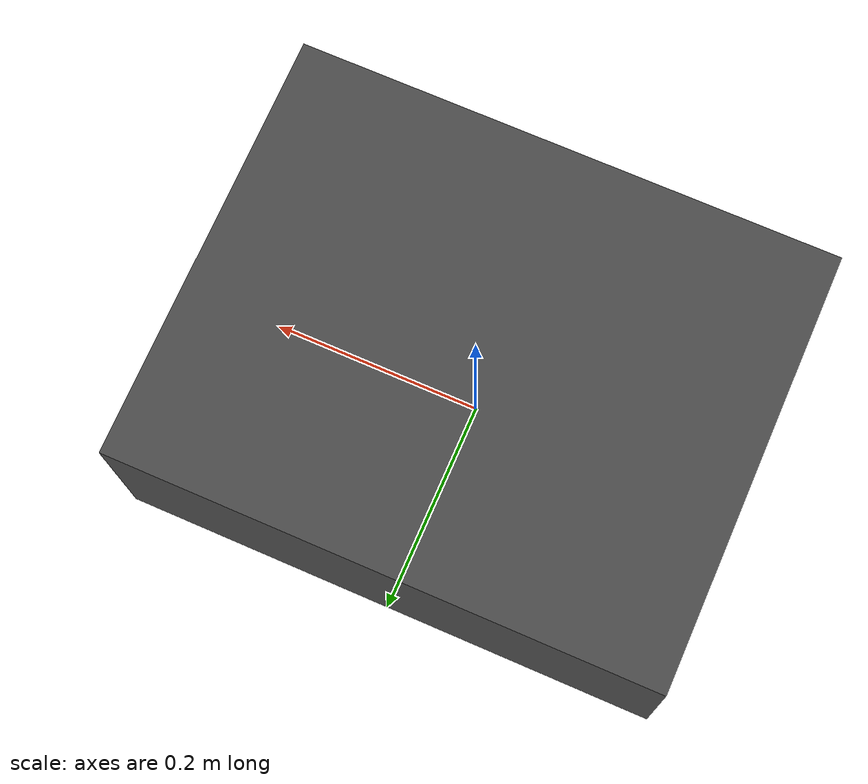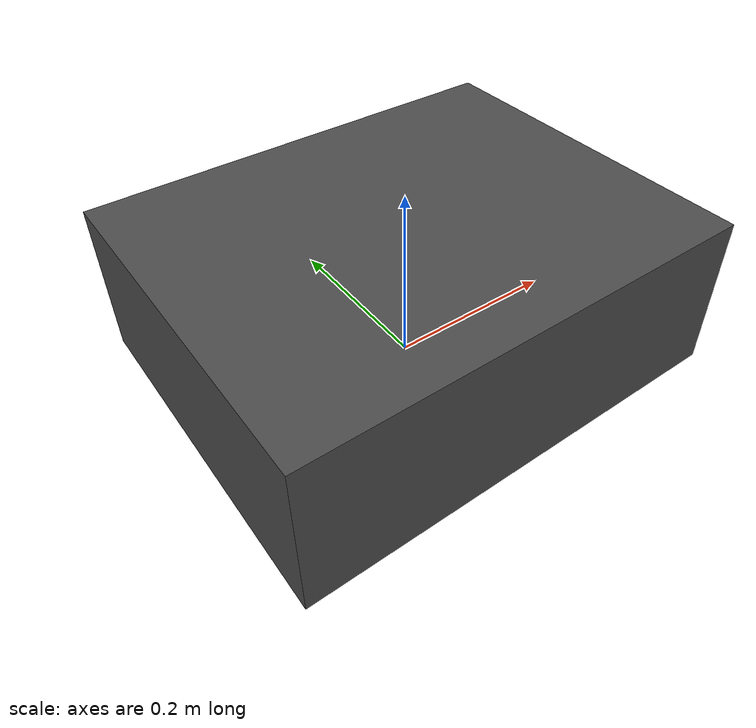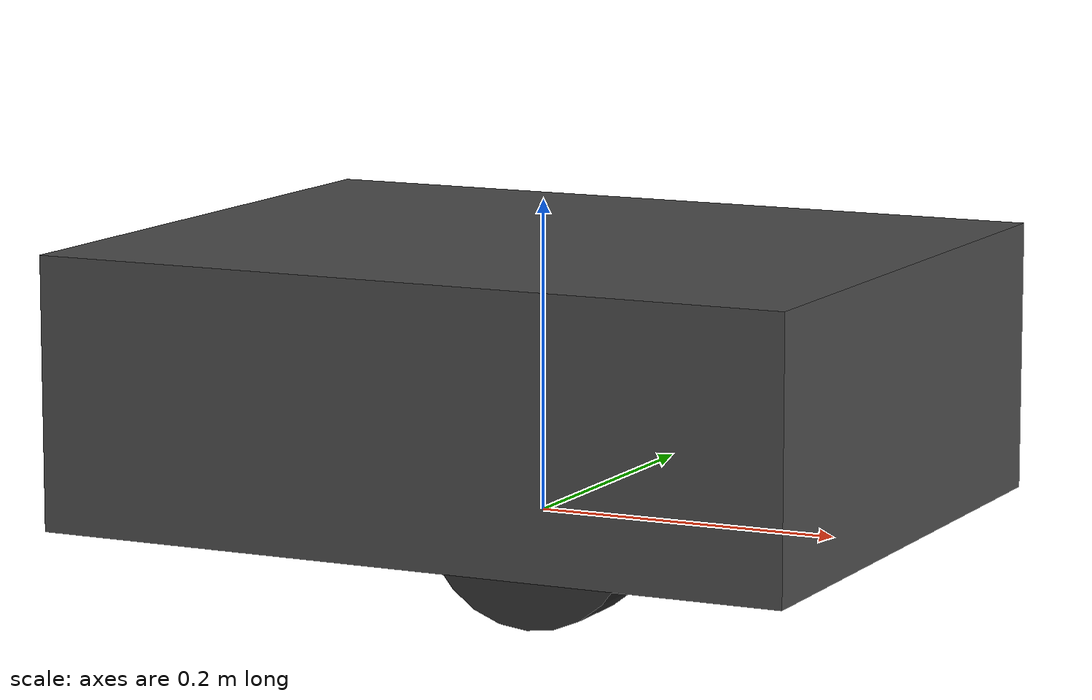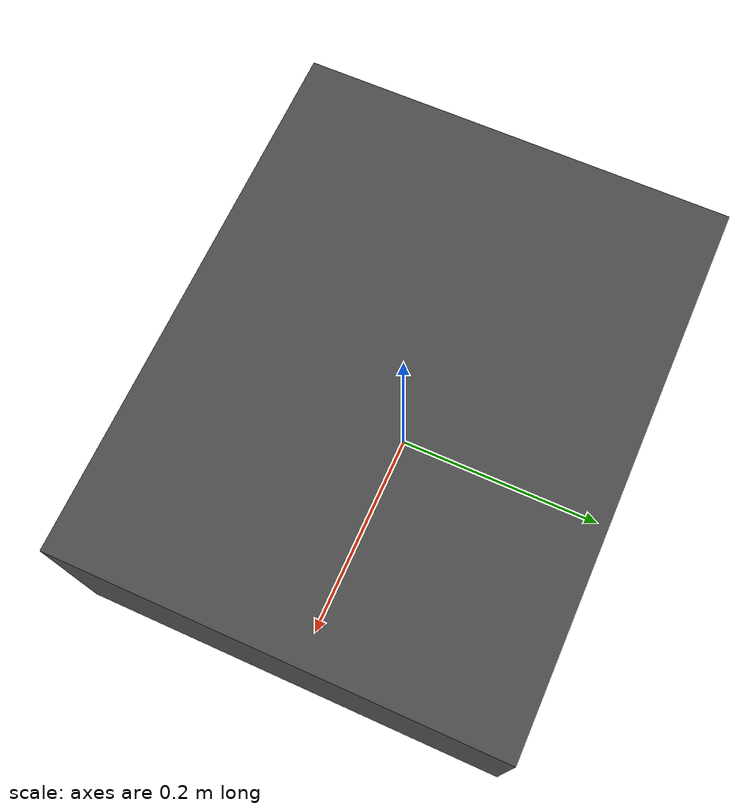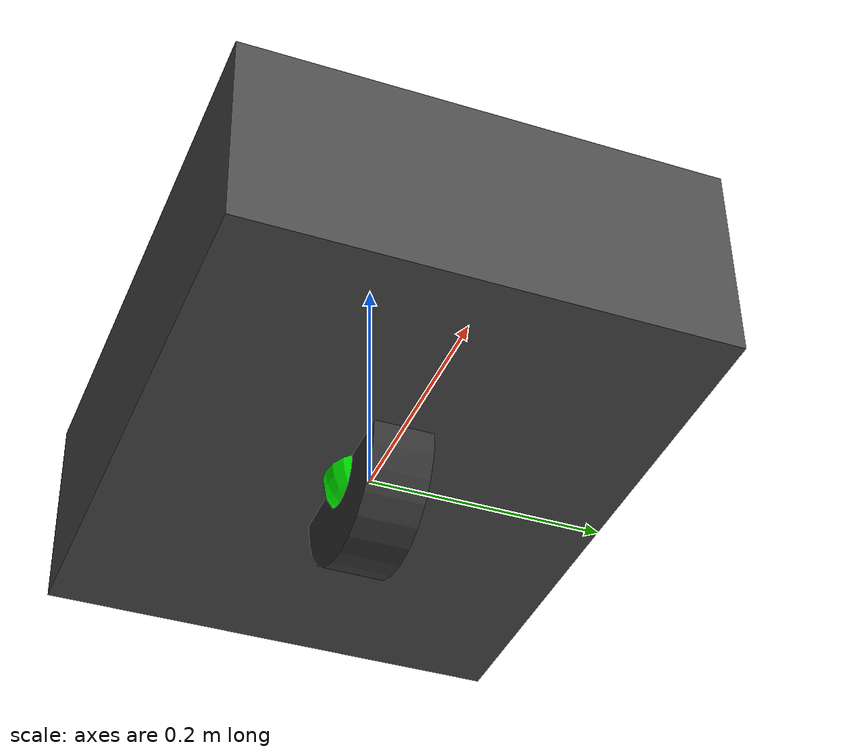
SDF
<?xml version="1.0" ?>
<sdf version="1.8">
  <model name="errandbot">

    <pose>0.0 0.0 0.0 0.0 0.0 0.0</pose>

    <link name="base_footprint"/>

    <link name="base_link">

      <inertial>
        <pose>0 0 0.0875 0 0 0</pose>
        <inertia>
          <ixx>0.4765625</ixx>
          <ixy>0</ixy>
          <ixz>0</ixz>
          <iyy>0.7015625</iyy>
          <iyz>0</iyz>
          <izz>1.025</izz>
        </inertia>
        <mass>30</mass>
      </inertial>

      <collision name="base_collision">
        <pose>0 0 0.0875 0 0 0</pose>
        <geometry>
          <box>
            <size>0.5 0.4 0.175</size>
          </box>
        </geometry>
      </collision>

      <visual name="base_visual">
        <pose>0 0 0.0875 0 0 0</pose>
        <geometry>
          <box>
            <size>0.5 0.4 0.175</size>
          </box>
        </geometry>
        <material>
          <ambient>0.3 0.3 0.3 1.0</ambient>
          <diffuse>0.3 0.3 0.3 1.0</diffuse>
        </material>
      </visual>

    </link>

    <link name="wheel_left_link">

      <inertial>
        <pose>0 0 0 1.57 0 0</pose>
        <inertia>
          <ixx>3.2291666e-03</ixx>
          <ixy>0</ixy>
          <ixz>0</ixz>
          <iyy>3.2291666e-03</iyy>
          <iyz>0</iyz>
          <izz>5.625e-03</izz>
        </inertia>
        <mass>0.2</mass>
      </inertial>

      <collision name="wheel_left_collision">
        <pose>0 0 0 1.57 0 0</pose>
        <geometry>
          <cylinder>
            <radius>0.075</radius>
            <length>0.05</length>
          </cylinder>
        </geometry>
        <surface>
          <friction>
            <ode>
              <mu>100000.0</mu>
              <mu2>100000.0</mu2>
              <fdir1>0 0 0</fdir1>
              <slip1>0.0</slip1>
              <slip2>0.0</slip2>
            </ode>
          </friction>
          <contact>
            <ode>
              <soft_cfm>0</soft_cfm>
              <soft_erp>0.2</soft_erp>
              <kp>1e+5</kp>
              <kd>1</kd>
              <max_vel>0.01</max_vel>
              <min_depth>0.001</min_depth>
            </ode>
          </contact>
        </surface>
      </collision>

      <visual name="wheel_left_visual">
        <pose>0 0 0 1.57 0 0</pose>
        <geometry>
          <cylinder>
            <radius>0.075</radius>
            <length>0.05</length>
          </cylinder>
        </geometry>
        <material>
          <ambient>0.2 0.2 0.2 1.0</ambient>
          <diffuse>0.2 0.2 0.2 1.0</diffuse>
        </material>
      </visual>
    </link>

    <link name="wheel_right_link">

      <inertial>
        <pose>0 0 0 1.57 0 0</pose>
        <inertia>
          <ixx>3.2291666e-03</ixx>
          <ixy>0</ixy>
          <ixz>0</ixz>
          <iyy>3.2291666e-03</iyy>
          <iyz>0</iyz>
          <izz>5.625e-03</izz>
        </inertia>
        <mass>0.2</mass>
      </inertial>

      <collision name="wheel_right_collision">
        <pose>0 0 0 1.57 0 0</pose>
        <geometry>
          <cylinder>
            <radius>0.075</radius>
            <length>0.05</length>
          </cylinder>
        </geometry>
        <surface>
          <friction>
            <ode>
              <mu>100000.0</mu>
              <mu2>100000.0</mu2>
              <fdir1>0 0 0</fdir1>
              <slip1>0.0</slip1>
              <slip2>0.0</slip2>
            </ode>
          </friction>
          <contact>
            <ode>
              <soft_cfm>0</soft_cfm>
              <soft_erp>0.2</soft_erp>
              <kp>1e+5</kp>
              <kd>1</kd>
              <max_vel>0.01</max_vel>
              <min_depth>0.001</min_depth>
            </ode>
          </contact>
        </surface>
      </collision>

      <visual name="wheel_right_visual">
        <pose>0 0 0 1.57 0 0</pose>
        <geometry>
          <cylinder>
            <radius>0.075</radius>
            <length>0.05</length>
          </cylinder>
        </geometry>
        <material>
          <ambient>0.2 0.2 0.2 1.0</ambient>
          <diffuse>0.2 0.2 0.2 1.0</diffuse>
        </material>
      </visual>

    </link>

    <link name='caster_back_right_link'>

      <pose>0 0 0 0 0 0</pose>

      <inertial>
        <mass>1.5</mass>
        <inertia>
          <ixx>8.4375e-04</ixx>
          <ixy>0</ixy>
          <ixz>0</ixz>
          <iyy>8.4375e-04</iyy>
          <iyz>0</iyz>
          <izz>8.4375e-04</izz>
        </inertia>
      </inertial>

      <collision name='collision'>
        <geometry>
          <sphere>
            <radius>0.0375</radius>
          </sphere>
        </geometry>
        <surface>
          <contact>
            <ode>
              <soft_cfm>0</soft_cfm>
              <soft_erp>0.2</soft_erp>
              <kp>1e+5</kp>
              <kd>1</kd>
              <max_vel>0.01</max_vel>
              <min_depth>0.001</min_depth>
            </ode>
          </contact>
        </surface>
      </collision>

      <visual name='visual'>
        <geometry>
          <sphere>
            <radius>0.0375</radius>
          </sphere>
        </geometry>
        <material>
          <ambient>0.0 1 0.0 1</ambient>
          <diffuse>0.0 1 0.0 1</diffuse>
          <specular>0.0 1 0.0 1</specular>
        </material>
      </visual>

    </link>

    <link name='caster_back_left_link'>

      <pose>0 0 0 0 0 0</pose>

      <inertial>
        <mass>1.5</mass>
        <inertia>
          <ixx>8.4375e-04</ixx>
          <ixy>0</ixy>
          <ixz>0</ixz>
          <iyy>8.4375e-04</iyy>
          <iyz>0</iyz>
          <izz>8.4375e-04</izz>
        </inertia>
      </inertial>

      <collision name='collision'>
        <geometry>
          <sphere>
            <radius>0.0375</radius>
          </sphere>
        </geometry>
        <surface>
          <contact>
            <ode>
              <soft_cfm>0</soft_cfm>
              <soft_erp>0.2</soft_erp>
              <kp>1e+5</kp>
              <kd>1</kd>
              <max_vel>0.01</max_vel>
              <min_depth>0.001</min_depth>
            </ode>
          </contact>
        </surface>
      </collision>

      <visual name='visual'>
        <geometry>
          <sphere>
            <radius>0.0375</radius>
          </sphere>
        </geometry>
        <material>
          <ambient>0.0 1 0.0 1</ambient>
          <diffuse>0.0 1 0.0 1</diffuse>
          <specular>0.0 1 0.0 1</specular>
        </material>
      </visual>

    </link>

    <link name='caster_front_right_link'>

      <pose>0 0 0 0 0 0</pose>

      <inertial>
        <mass>1.5</mass>
        <inertia>
          <ixx>8.4375e-04</ixx>
          <ixy>0</ixy>
          <ixz>0</ixz>
          <iyy>8.4375e-04</iyy>
          <iyz>0</iyz>
          <izz>8.4375e-04</izz>
        </inertia>
      </inertial>

      <collision name='collision'>
        <geometry>
          <sphere>
            <radius>0.0375</radius>
          </sphere>
        </geometry>
        <surface>
          <contact>
            <ode>
              <soft_cfm>0</soft_cfm>
              <soft_erp>0.2</soft_erp>
              <kp>1e+5</kp>
              <kd>1</kd>
              <max_vel>0.01</max_vel>
              <min_depth>0.001</min_depth>
            </ode>
          </contact>
        </surface>
      </collision>

      <visual name='visual'>
        <geometry>
          <sphere>
            <radius>0.0375</radius>
          </sphere>
        </geometry>
        <material>
          <ambient>0.0 1 0.0 1</ambient>
          <diffuse>0.0 1 0.0 1</diffuse>
          <specular>0.0 1 0.0 1</specular>
        </material>
      </visual>

    </link>

    <link name='caster_front_left_link'>

      <pose>0 0 0 0 0 0</pose>

      <inertial>
        <mass>1.5</mass>
        <inertia>
          <ixx>8.4375e-04</ixx>
          <ixy>0</ixy>
          <ixz>0</ixz>
          <iyy>8.4375e-04</iyy>
          <iyz>0</iyz>
          <izz>8.4375e-04</izz>
        </inertia>
      </inertial>

      <collision name='collision'>
        <geometry>
          <sphere>
            <radius>0.0375</radius>
          </sphere>
        </geometry>
        <surface>
          <contact>
            <ode>
              <soft_cfm>0</soft_cfm>
              <soft_erp>0.2</soft_erp>
              <kp>1e+5</kp>
              <kd>1</kd>
              <max_vel>0.01</max_vel>
              <min_depth>0.001</min_depth>
            </ode>
          </contact>
        </surface>
      </collision>

      <visual name='visual'>
        <geometry>
          <sphere>
            <radius>0.0375</radius>
          </sphere>
        </geometry>
        <material>
          <ambient>0.0 1 0.0 1</ambient>
          <diffuse>0.0 1 0.0 1</diffuse>
          <specular>0.0 1 0.0 1</specular>
        </material>
      </visual>

    </link>

    <link name="imu_link">

      <sensor name="erb_imu" type="imu">
        <always_on>true</always_on>
        <update_rate>200</update_rate>
        <topic>imu</topic>
        <imu>
          <angular_velocity>
            <x>
              <noise type="gaussian">
                <mean>0.0</mean>
                <stddev>2e-4</stddev>
              </noise>
            </x>
            <y>
              <noise type="gaussian">
                <mean>0.0</mean>
                <stddev>2e-4</stddev>
              </noise>
            </y>
            <z>
              <noise type="gaussian">
                <mean>0.0</mean>
                <stddev>2e-4</stddev>
              </noise>
            </z>
          </angular_velocity>
          <linear_acceleration>
            <x>
              <noise type="gaussian">
                <mean>0.0</mean>
                <stddev>1.7e-2</stddev>
              </noise>
            </x>
            <y>
              <noise type="gaussian">
                <mean>0.0</mean>
                <stddev>1.7e-2</stddev>
              </noise>
            </y>
            <z>
              <noise type="gaussian">
                <mean>0.0</mean>
                <stddev>1.7e-2</stddev>
              </noise>
            </z>
          </linear_acceleration>
        </imu>
      </sensor>

    </link>

    <link name="base_scan">

      <inertial>
        <pose>0 0 0.025 0 0 0</pose>
        <inertia>
          <ixx>0.0364583e-03</ixx>
          <ixy>0.000</ixy>
          <ixz>0.000</ixz>
          <iyy>0.0364583e-03</iyy>
          <iyz>0.000</iyz>
          <izz>0.03125e-03</izz>
        </inertia>
        <mass>0.1</mass>
      </inertial>

      <collision name="lidar_sensor_collision">
        <pose>0 0 0.025 0 0 0</pose>
        <geometry>
          <cylinder>
            <radius>0.025</radius>
            <length>0.05</length>
          </cylinder>
        </geometry>
      </collision>

      <visual name="lidar_sensor_visual">
        <pose>0 0 0.025 0 0 0</pose>
        <geometry>
          <cylinder>
            <radius>0.025</radius>
            <length>0.05</length>
          </cylinder>
        </geometry>
        <material>
          <ambient>0.2 0.2 0.2 1.0</ambient>
          <diffuse>0.2 0.2 0.2 1.0</diffuse>
        </material>
      </visual>

      <sensor name="gpu_lidar" type="gpu_lidar">
        <always_on>true</always_on>
        <visualize>true</visualize>
        <pose>0 0 0.025 0 0 0</pose>
        <update_rate>10</update_rate>
        <topic>scan</topic>
        <gz_frame_id>base_scan</gz_frame_id>
        <lidar>
          <scan>
            <horizontal>
              <samples>360</samples>
              <resolution>1.000000</resolution>
              <min_angle>0.000000</min_angle>
              <max_angle>6.280000</max_angle>
            </horizontal>
          </scan>
          <range>
            <min>0.120000</min>
            <max>3.5</max>
            <resolution>0.015000</resolution>
          </range>
          <noise>
            <type>gaussian</type>
            <mean>0.0</mean>
            <stddev>0.01</stddev>
          </noise>
        </lidar>
      </sensor>

    </link>

    <joint name="base_joint" type="fixed">
      <parent>base_footprint</parent>
      <child>base_link</child>
      <pose>0 0 0.075 0 0 0</pose>
    </joint>

    <joint name="wheel_left_joint" type="revolute">
      <parent>base_link</parent>
      <child>wheel_left_link</child>
      <pose>0 0.225 0 0 0 0</pose>
      <axis>
        <xyz>0 1 0</xyz>
        <limit>
          <effort>20</effort>
        </limit>
      </axis>
    </joint>

    <joint name="wheel_right_joint" type="revolute">
      <parent>base_link</parent>
      <child>wheel_right_link</child>
      <pose>0 -0.225 0 0 0 0</pose>
      <axis>
        <xyz>0 1 0</xyz>
        <limit>
          <effort>20</effort>
        </limit>
      </axis>
    </joint>

    <joint name='caster_back_right_joint' type='ball'>
      <parent>base_link</parent>
      <child>caster_back_right_link</child>
      <pose>-0.175 -0.175 -0.075 0 0 0</pose>
    </joint>

    <joint name='caster_back_left_joint' type='ball'>
      <parent>base_link</parent>
      <child>caster_back_left_link</child>
      <pose>-0.175 0.175 -0.075 0 0 0</pose>
    </joint>

    <joint name='caster_front_right_joint' type='ball'>
      <parent>base_link</parent>
      <child>caster_front_right_link</child>
      <pose>0.175 -0.175 -0.075 0 0 0</pose>
    </joint>

    <joint name='caster_front_left_joint' type='ball'>
      <parent>base_link</parent>
      <child>caster_front_left_link</child>
      <pose>0.175 0.175 -0.075 0 0 0</pose>
    </joint>

    <joint name="imu_joint" type="fixed">
      <parent>base_link</parent>
      <child>imu_link</child>
      <pose>0 0 0.175 0 0 0</pose>
    </joint>

    <joint name="lidar_joint" type="fixed">
      <parent>base_link</parent>
      <child>base_scan</child>
      <pose>0.175 0 0.175 0 0 0</pose>
    </joint>

    <plugin filename="gz-sim-diff-drive-system" name="gz::sim::systems::DiffDrive">
      <!-- wheels -->
      <left_joint>wheel_left_joint</left_joint>
      <right_joint>wheel_right_joint</right_joint>
      <!-- kinematics -->
      <wheel_separation>0.45</wheel_separation>
      <wheel_radius>0.075</wheel_radius>
      <!-- limits -->
      <max_linear_acceleration>1.0</max_linear_acceleration>
      <topic>cmd_vel</topic>
      <odom_topic>odom</odom_topic>
      <frame_id>odom</frame_id>
      <child_frame_id>base_footprint</child_frame_id>
      <odom_publisher_frequency>30</odom_publisher_frequency>
      <tf_topic>/tf</tf_topic>
    </plugin>

    <plugin filename="gz-sim-sensors-system" name="gz::sim::systems::Sensors">
      <topic>lidar</topic>
      <render_engine>ogre2</render_engine>
    </plugin>

    <plugin filename="gz-sim-joint-state-publisher-system" name="gz::sim::systems::JointStatePublisher">
      <topic>joint_states</topic>
      <joint_name>wheel_left_joint</joint_name>
      <joint_name>wheel_right_joint</joint_name>
    </plugin>

  </model>
</sdf>
